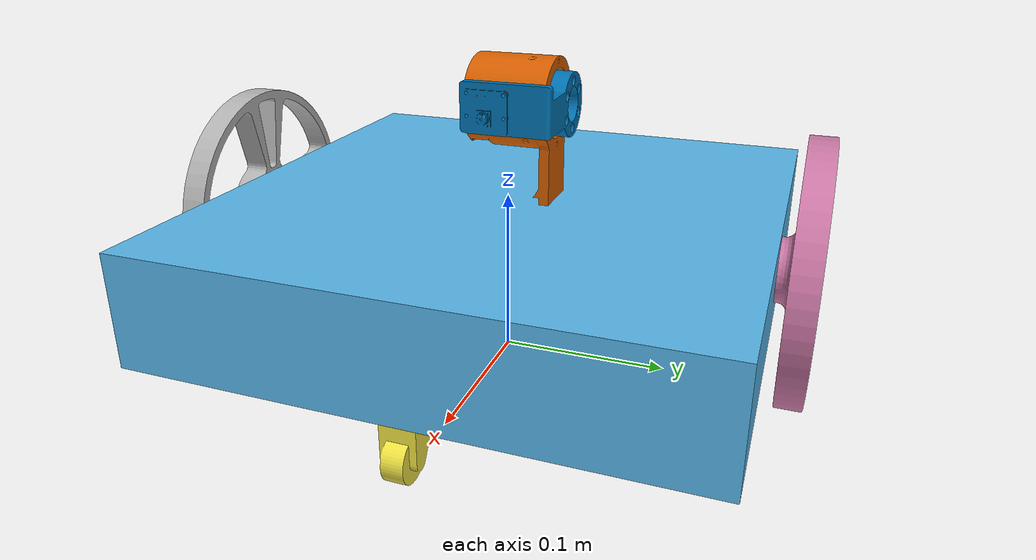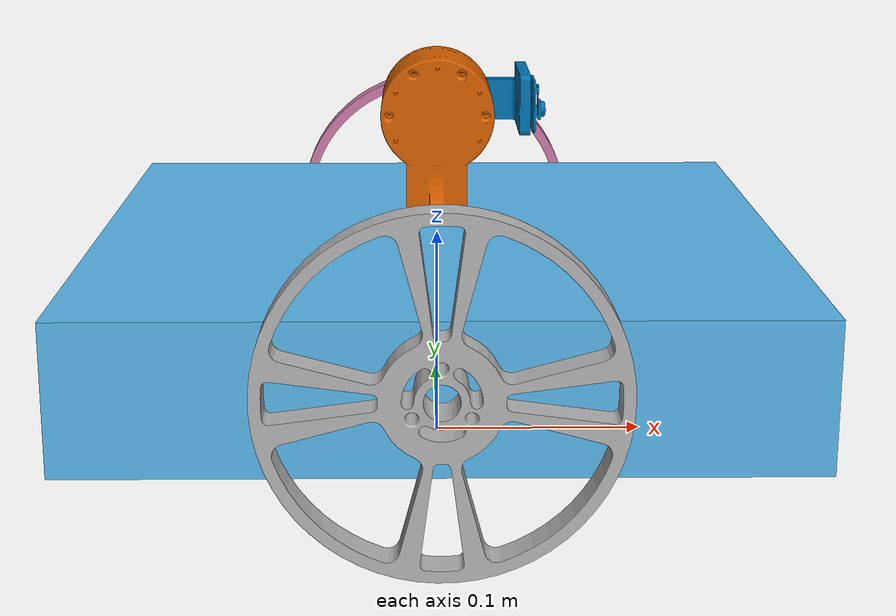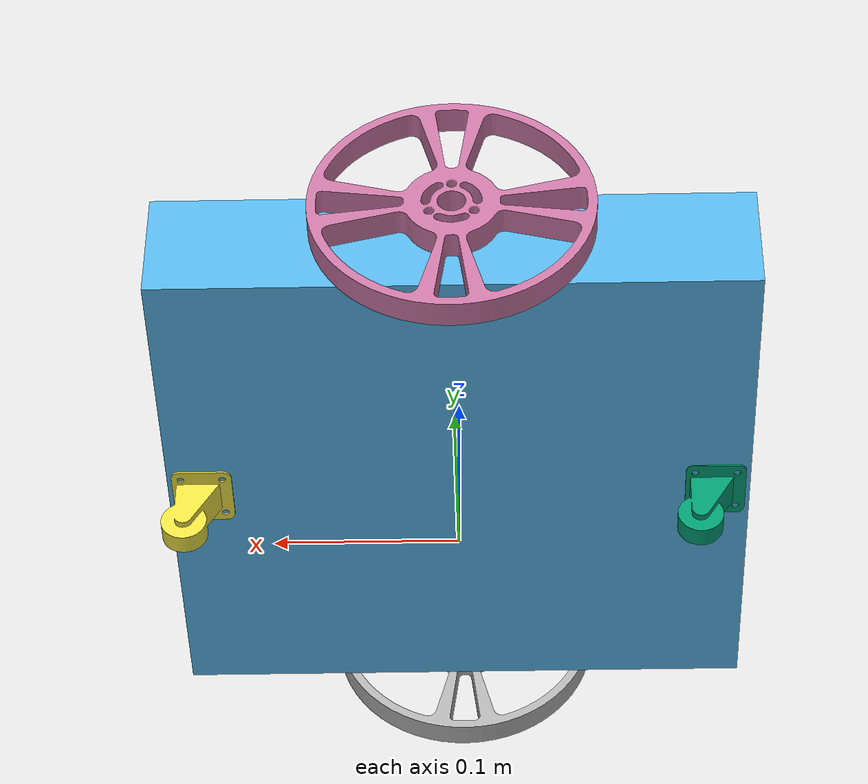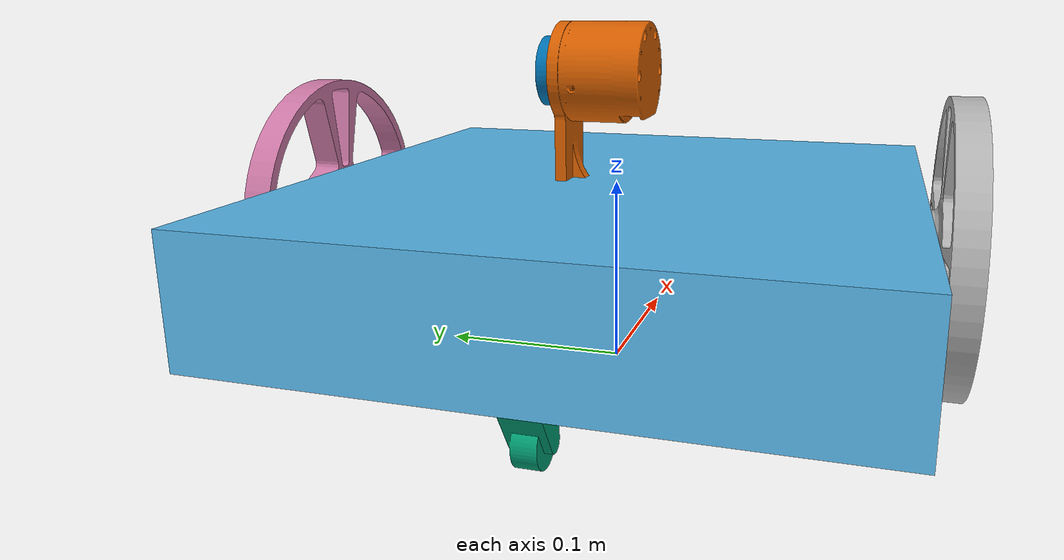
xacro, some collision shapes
<?xml version="1.0"?>
<robot xmlns:xacro="http://www.ros.org/wiki/xacro" name="iot_robot">

    <!-- mock:=true replaces the motors with mock_components, for testing without CAN -->
    <xacro:arg name="mock" default="false" />
    <xacro:arg name="can_interface" default="can0" />
    <!-- CAN ID, direction and zero_on_start of every motor (absolute path). This file is
         the only place they are set; see the comments in it -->
    <xacro:arg name="motors" default="$(find iot_robot_bringup)/config/motors.yaml" />
    <!-- can: the gizmo motors are driven over CAN by GizmoSystem (gizmo_controller).
         fixed: the gizmo joints are not in ros2_control; stm32_bridge publishes
         constant joint states for them -->
    <xacro:arg name="gizmo_mode" default="can" />

    <!-- The physical robot: links, joints (with their limits), meshes, camera and
         ultrasonic frames -->
    <xacro:include filename="$(find iot_robot_description)/urdf/robot.urdf.xacro" />

    <xacro:property name="gizmo_mode" value="$(arg gizmo_mode)" />
    <xacro:property name="gizmo_can" lazy_eval="false"
        value="${gizmo_mode == 'can' if gizmo_mode in ['can', 'fixed'] else xacro.fatal('gizmo_mode must be can or fixed, got: ' + str(gizmo_mode))}" />

    <!-- motors.yaml, read only on first use, i.e. only without mock:=true -->
    <xacro:property name="motors_file" value="$(arg motors)" />
    <xacro:property name="motors_yaml" value="${xacro.load_yaml(motors_file)}" />
    <xacro:property name="motors_table"
        value="${motors_yaml['motors'] if python.isinstance(motors_yaml, dict) and 'motors' in motors_yaml and python.isinstance(motors_yaml['motors'], dict) else xacro.fatal(motors_file + ': expected a top-level motors: mapping with one entry per joint')}" />

    <xacro:macro name="ak45_10_params" params="joint">
        <xacro:property name="entry" lazy_eval="false"
            value="${motors_table[joint] if joint in motors_table and python.isinstance(motors_table[joint], dict) else xacro.fatal(motors_file + ': no entry for ' + joint + ' under motors: (docs/todo.md)')}" />
        <xacro:property name="can_id" lazy_eval="false"
            value="${entry['can_id'] if 'can_id' in entry and python.isinstance(entry['can_id'], int) and not python.isinstance(entry['can_id'], bool) and entry['can_id'] >= 1 and 254 >= entry['can_id'] else xacro.fatal(motors_file + ': ' + joint + ' needs can_id: an integer from 1 to 254')}" />
        <xacro:property name="direction" lazy_eval="false"
            value="${entry['direction'] if 'direction' in entry and not python.isinstance(entry['direction'], bool) and entry['direction'] in [1, -1] else xacro.fatal(motors_file + ': ' + joint + ' needs direction: 1 or -1')}" />
        <param name="can_id">${can_id}</param>
        <param name="direction">${direction}</param>
        <param name="pole_pairs">14</param>
        <param name="gear_ratio">10</param>
        <param name="kt">0.127</param>
    </xacro:macro>

    <xacro:macro name="wheel" params="joint">
        <joint name="${joint}">
            <xacro:unless value="$(arg mock)">
                <xacro:ak45_10_params joint="${joint}" />
            </xacro:unless>
            <command_interface name="velocity" />
            <state_interface name="position">
                <param name="initial_value">0.0</param>
            </state_interface>
            <state_interface name="velocity">
                <param name="initial_value">0.0</param>
            </state_interface>
            <xacro:unless value="$(arg mock)">
                <state_interface name="effort" />
            </xacro:unless>
        </joint>
    </xacro:macro>

    <xacro:macro name="gizmo_joint" params="joint">
        <joint name="${joint}">
            <xacro:unless value="$(arg mock)">
                <xacro:ak45_10_params joint="${joint}" />
                <xacro:property name="zero_on_start" lazy_eval="false"
                    value="${motors_table[joint].get('zero_on_start', False) is True}" />
                <param name="zero_on_activate">${'true' if zero_on_start else 'false'}</param>
                <param name="stall_effort">1.0</param>
                <param name="stall_time_ms">500</param>
                <limits enable="false" />
            </xacro:unless>
            <command_interface name="position" />
            <state_interface name="position">
                <param name="initial_value">0.0</param>
            </state_interface>
            <state_interface name="velocity">
                <param name="initial_value">0.0</param>
            </state_interface>
            <xacro:unless value="$(arg mock)">
                <state_interface name="effort" />
            </xacro:unless>
        </joint>
    </xacro:macro>

    <xacro:macro name="cubemars_hardware">
        <plugin>cubemars_hardware_safe/SafeCubeMarsSystemHardware</plugin>
        <param name="can_interface">$(arg can_interface)</param>
        <param name="status_timeout_ms">100</param>
        <param name="brake_time_ms">300</param>
    </xacro:macro>

    <ros2_control name="WheelSystem" type="system">
        <hardware>
            <xacro:if value="$(arg mock)">
                <plugin>mock_components/GenericSystem</plugin>
                <!-- Integrate velocity commands into position so odometry moves -->
                <param name="calculate_dynamics">true</param>
            </xacro:if>
            <xacro:unless value="$(arg mock)">
                <xacro:cubemars_hardware />
            </xacro:unless>
        </hardware>
        <xacro:wheel joint="wheel_joint_left" />
        <xacro:wheel joint="wheel_joint_right" />
    </ros2_control>

    <xacro:if value="${gizmo_can}">
        <ros2_control name="GizmoSystem" type="system">
            <hardware>
                <xacro:if value="$(arg mock)">
                    <plugin>mock_components/GenericSystem</plugin>
                </xacro:if>
                <xacro:unless value="$(arg mock)">
                    <xacro:cubemars_hardware />
                </xacro:unless>
            </hardware>
            <xacro:gizmo_joint joint="gizmo_yaw_joint" />
            <xacro:gizmo_joint joint="gizmo_pitch_joint" />
        </ros2_control>
    </xacro:if>

</robot>

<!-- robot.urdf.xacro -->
<!--
  Robot: iot_robot
  Generated by: LinkForge v1.5.1
  https://github.com/arounamounchili/linkforge
  Date: 2026-09-09 17:59:57
-->
<robot xmlns:xacro="http://ros.org/wiki/xacro" name="iot_robot">
    <!-- Links -->
    <link name="base_footprint" />
    <link name="base_link">
        <inertial>
            <origin xyz="0 0 0.033" rpy="0 0 0" />
            <mass value="1.5" />
            <inertia ixx="0.013345" ixy="0" ixz="0" iyy="0.013345" iyz="0" izz="0.0256" />
        </inertial>
        <visual>
            <origin xyz="0 0 0.033" rpy="0 0 0" />
            <geometry>
                <mesh filename="package://iot_robot_description/meshes/base_link_visual.stl" />
            </geometry>
        </visual>
        <collision>
            <origin xyz="0 0 0.033" rpy="0 0 0" />
            <geometry>
                <box size="0.32 0.32 0.066" />
            </geometry>
        </collision>
    </link>
    <link name="caster_back">
        <inertial>
            <origin xyz="0.002624 0 -0.017848" rpy="0 0 0" />
            <mass value="0.1" />
            <inertia ixx="0.000015" ixy="0" ixz="0" iyy="0.000015" iyz="0" izz="0.000015" />
        </inertial>
        <visual>
            <origin xyz="0.002624 0 -0.017848" rpy="0 0 0" />
            <geometry>
                <mesh filename="package://iot_robot_description/meshes/caster_back_visual.stl" />
            </geometry>
        </visual>
        <collision>
            <origin xyz="0.002624 0 -0.017848" rpy="0 0 0" />
            <geometry>
                <sphere radius="0.01925" />
            </geometry>
        </collision>
    </link>
    <link name="caster_front">
        <inertial>
            <origin xyz="0.002497 0 -0.017992" rpy="0 0 0" />
            <mass value="0.1" />
            <inertia ixx="0.000015" ixy="0" ixz="0" iyy="0.000015" iyz="0" izz="0.000015" />
        </inertial>
        <visual>
            <origin xyz="0.002497 0 -0.017992" rpy="0 0 0" />
            <geometry>
                <mesh filename="package://iot_robot_description/meshes/caster_front_visual.stl" />
            </geometry>
        </visual>
        <collision>
            <origin xyz="0.002497 0 -0.017992" rpy="0 0 0" />
            <geometry>
                <sphere radius="0.01925" />
            </geometry>
        </collision>
    </link>
    <link name="gizmo_pitch_link">
        <inertial>
            <origin xyz="0.01654 -0.0195 0" rpy="0 0 0" />
            <mass value="0.2" />
            <inertia ixx="0.000066" ixy="0" ixz="0" iyy="0.000104" iyz="0" izz="0.000125" />
        </inertial>
        <visual>
            <origin xyz="0.01654 -0.0195 0" rpy="0 0 0" />
            <geometry>
                <mesh filename="package://iot_robot_description/meshes/gizmo_pitch_link_visual.stl" />
            </geometry>
        </visual>
    </link>
    <link name="gizmo_yaw_link">
        <inertial>
            <origin xyz="0 0.006 0.05075" rpy="0 0 0" />
            <mass value="0.3" />
            <inertia ixx="0.000315" ixy="0" ixz="0" iyy="0.000328" iyz="0" izz="0.000128" />
        </inertial>
        <visual>
            <origin xyz="0 0.006 0.05075" rpy="0 0 0" />
            <geometry>
                <mesh filename="package://iot_robot_description/meshes/gizmo_yaw_link_visual.stl" />
            </geometry>
        </visual>
    </link>
    <link name="wheel_link_left">
        <inertial>
            <origin xyz="0.000053 0 0.0075" rpy="0 0 0" />
            <mass value="0.2" />
            <inertia ixx="0.000288" ixy="0" ixz="0" iyy="0.000288" iyz="0" izz="0.000568" />
        </inertial>
        <visual>
            <origin xyz="0.00534 0 0" rpy="0 0 0" />
            <geometry>
                <mesh filename="package://iot_robot_description/meshes/wheel_link_left_visual.stl" />
            </geometry>
        </visual>
        <collision>
            <origin xyz="0.000053 0 0.0075" rpy="0 0 0" />
            <geometry>
                <cylinder radius="0.075353" length="0.015" />
            </geometry>
        </collision>
    </link>
    <link name="wheel_link_right">
        <inertial>
            <origin xyz="0.000053 0 0.0075" rpy="0 0 0" />
            <mass value="0.2" />
            <inertia ixx="0.000288" ixy="0" ixz="0" iyy="0.000288" iyz="0" izz="0.000568" />
        </inertial>
        <visual>
            <origin xyz="0.00534 0 0" rpy="0 0 0" />
            <geometry>
                <mesh filename="package://iot_robot_description/meshes/wheel_link_right_visual.stl" />
            </geometry>
        </visual>
        <collision>
            <origin xyz="0.000053 0 0.0075" rpy="0 0 0" />
            <geometry>
                <cylinder radius="0.075353" length="0.015" />
            </geometry>
        </collision>
    </link>
    <!-- Joints -->
    <joint name="base_joint" type="fixed">
        <origin xyz="0 0 0.035875" rpy="0 0 0" />
        <parent link="base_footprint" />
        <child link="base_link" />
    </joint>
    <joint name="caster_back_joint" type="fixed">
        <origin xyz="-0.141001 0 0.000126" rpy="0 0 0" />
        <parent link="base_link" />
        <child link="caster_back" />
    </joint>
    <joint name="caster_front_joint" type="fixed">
        <origin xyz="0.141 0 0" rpy="0 0 0" />
        <parent link="base_link" />
        <child link="caster_front" />
    </joint>
    <joint name="gizmo_pitch_joint" type="revolute">
        <origin xyz="0 0.033 0.075" rpy="0 0 0" />
        <parent link="gizmo_yaw_link" />
        <child link="gizmo_pitch_link" />
        <axis xyz="0 1 0" />
        <limit effort="10" velocity="1" lower="-0.785398" upper="0" />
    </joint>
    <joint name="gizmo_yaw_joint" type="revolute">
        <origin xyz="0 0 0.048" rpy="0 0 0" />
        <parent link="base_link" />
        <child link="gizmo_yaw_link" />
        <axis xyz="0 0 1" />
        <limit effort="10" velocity="1" lower="-0.785398" upper="0.785398" />
    </joint>
    <joint name="wheel_joint_left" type="continuous">
        <origin xyz="0 0.167 0.0395" rpy="1.570796 0 -3.141593" />
        <parent link="base_link" />
        <child link="wheel_link_left" />
        <axis xyz="0 0 1" />
        <limit effort="7" velocity="19" />
    </joint>
    <joint name="wheel_joint_right" type="continuous">
        <origin xyz="0 -0.167 0.0395" rpy="1.570796 0 0" />
        <parent link="base_link" />
        <child link="wheel_link_right" />
        <axis xyz="0 0 -1" />
        <limit effort="7" velocity="19" />
    </joint>

    <!-- Camera body frame on the pan/tilt head (REP 103: x forward, y left, z up) -->
    <link name="camera_link" />
    <joint name="camera_joint" type="fixed">
        <origin xyz="0.0515 -0.03 0" rpy="0 0 0" />
        <parent link="gizmo_pitch_link" />
        <child link="camera_link" />
    </joint>

    <!-- Optical frame (REP 103: z forward, x right, y down); images are expressed in this frame -->
    <link name="camera_optical_frame" />
    <joint name="camera_optical_joint" type="fixed">
        <origin xyz="0 0 0" rpy="${-pi/2} 0 ${-pi/2}" />
        <parent link="camera_link" />
        <child link="camera_optical_frame" />
    </joint>

    <link name="ultrasonic_left_link" />
    <joint name="ultrasonic_left_joint" type="fixed">
        <origin xyz="0.144 0.114 0.030" rpy="0 0 ${pi/4}" />
        <parent link="base_link" />
        <child link="ultrasonic_left_link" />
    </joint>
    <link name="ultrasonic_right_link" />
    <joint name="ultrasonic_right_joint" type="fixed">
        <origin xyz="0.144 -0.114 0.030" rpy="0 0 ${-pi/4}" />
        <parent link="base_link" />
        <child link="ultrasonic_right_link" />
    </joint>

    <link name="imu_link" />
    <joint name="imu_joint" type="fixed">
        <origin xyz="0 0 0.05" rpy="0 0 0" />
        <parent link="base_link" />
        <child link="imu_link" />
    </joint>

</robot>
